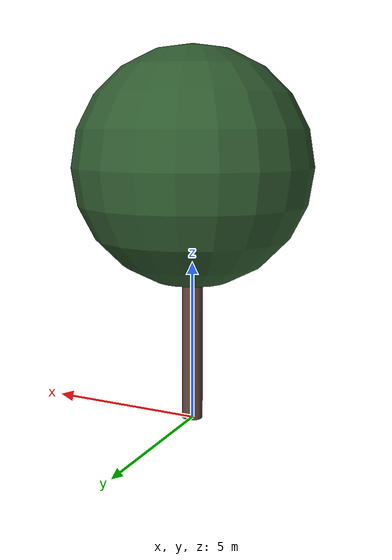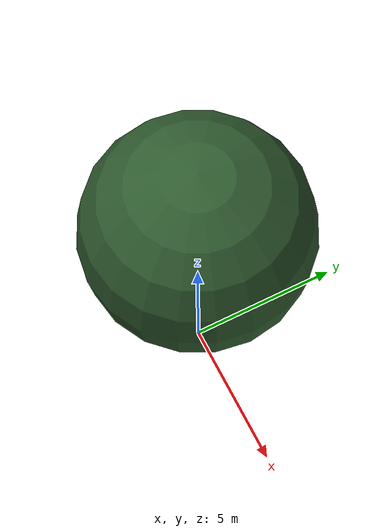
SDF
<?xml version="1.0" ?>
<sdf version="1.10">
  <model name="pin_parasol_13">
    <static>true</static>

    <!-- Tronc -->
    <link name="trunk">
      <pose>0 0 3.430812110261504 0 0 0</pose>
      <visual name="trunk_visual">
        <geometry>
          <cylinder>
            <radius>0.3205545643240757</radius>
            <length>6.861624220523008</length>
          </cylinder>
        </geometry>
        <material>
          <ambient>0.36 0.25 0.22 1</ambient>
          <diffuse>0.36 0.25 0.22 1</diffuse>
          <specular>0.1 0.1 0.1 1</specular>
        </material>
      </visual>
      <collision name="trunk_collision">
        <geometry>
          <cylinder>
            <radius>0.3205545643240757</radius>
            <length>6.861624220523008</length>
          </cylinder>
        </geometry>
      </collision>
    </link>

    <!-- Feuillage -->
    <link name="crown">
      <pose>0 0 7.971602645487633 0 0 0</pose>
      <visual name="crown_visual">
        <geometry>
          <sphere>
              <radius>3.699928083215417</radius>
            </sphere>
        </geometry>
        <material>
          <ambient>0.18 0.35 0.18 1</ambient>
          <diffuse>0.18 0.35 0.18 1</diffuse>
          <specular>0.1 0.1 0.1 1</specular>
        </material>
      </visual>
      <collision name="crown_collision">
        <geometry>
          <sphere>
            <radius>2.959942466572334</radius>
          </sphere>
        </geometry>
      </collision>
    </link>

    <!-- Joint tronc-feuillage -->
    <joint name="trunk_crown_joint" type="fixed">
      <parent>trunk</parent>
      <child>crown</child>
    </joint>

  </model>
</sdf>
